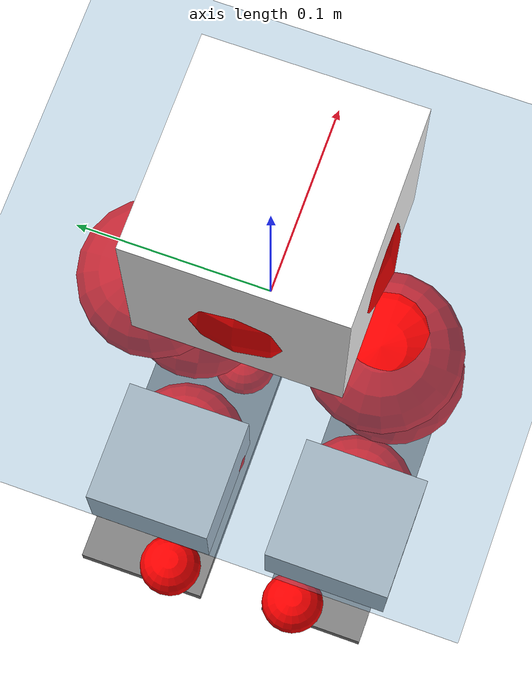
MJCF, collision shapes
<mujoco model="pi_12dof_release_v1">
  <compiler angle="radian" assetdir="assets" balanceinertia="true" inertiafromgeom="false"/>

  <option timestep="0.005" density="1.2" viscosity="2e-05"/>

  <size nkey="1"/>

  <visual>
    <quality shadowsize="8192"/>
    <map shadowclip="0.5"/>
  </visual>

  <default>
    <default class="/">
      <joint armature="0.01" damping="0.01" frictionloss="0.01"/>
      <geom contype="0" conaffinity="0" group="1" solref="-1000 -80"/>
      <site size="0.01 0.005 0.005" group="5"/>
      <general forcelimited="true" biastype="affine" gainprm="20" biasprm="0 -20 -0.5"/>
      <default class="foot">
        <geom size="0.0845 0.036 0.005" type="box" condim="6" group="4" priority="1" friction="0.9 0.2 0.2" solimp="0.015 1 0.005"/>
      </default>
      <default class="reward_collision_sphere">
        <geom group="5" rgba="1 0 0 1"/>
      </default>
    </default>
  </default>

  <asset>
    <texture type="skybox" colorspace="auto" name="//unnamed_texture_0" builtin="gradient" rgb1="0.95 0.95 0.95" rgb2="0.95 0.95 0.95" width="100" height="600"/>
    <texture type="2d" colorspace="auto" name="texplane" builtin="checker" rgb1="0.345 0.575 0.748" rgb2="0.345 0.575 0.748" markrgb="1 1 1" width="512" height="512"/>
    <material name="MatPlane" class="/" texture="texplane" texuniform="true" texrepeat="2 2" specular="0.9"/>
    <mesh name="baselink_1" class="/" file="baselink_1.STL"/>
    <mesh name="r_hip_pitch_link" class="/" file="r_hip_pitch_link.STL"/>
    <mesh name="r_hip_roll_link" class="/" file="r_hip_roll_link.STL"/>
    <mesh name="r_thigh_link" class="/" file="r_thigh_link.STL"/>
    <mesh name="r_calf_link" class="/" file="r_calf_link.STL"/>
    <mesh name="r_ankle_pitch_link" class="/" file="r_ankle_pitch_link.STL"/>
    <mesh name="r_ankle_roll_link" class="/" file="r_ankle_roll_link.STL"/>
    <mesh name="l_hip_pitch_link" class="/" file="l_hip_pitch_link.STL"/>
    <mesh name="l_hip_roll_link" class="/" file="l_hip_roll_link.STL"/>
    <mesh name="l_thigh_link" class="/" file="l_thigh_link.STL"/>
    <mesh name="l_calf_link" class="/" file="l_calf_link.STL"/>
    <mesh name="l_ankle_pitch_link" class="/" file="l_ankle_pitch_link.STL"/>
    <mesh name="l_ankle_roll_link" class="/" file="l_ankle_roll_link.STL"/>
  </asset>

  <worldbody>
    <geom name="floor" class="/" size="100 100 0.125" type="plane" group="0" material="MatPlane"/>
    <light name="toplight_shadow" class="/" pos="0 0 5" dir="0.0990148 0.0990148 -0.990148" type="directional" ambient="0.04 0.04 0.04" diffuse="0.55 0.55 0.55" specular="0.12 0.12 0.12"/>
    <light name="toplight_fill" class="/" pos="0 0 5" dir="0.0990148 0.0990148 -0.990148" type="directional" castshadow="false" ambient="0.04 0.04 0.04" diffuse="0.3 0.3 0.3" specular="0.08 0.08 0.08"/>
    <body name="trunk" pos="9.60147e-07 -0.00154913 0.00051316" quat="1 1.32603e-05 -5.62564e-07 -2.23835e-05">
      <inertial pos="0.00142293 -0.00252242 0.0469486" quat="0.695525 0.0209887 0.00293291 0.71819" mass="2.24002" diaginertia="0.0147355 0.00288472 0.00891884"/>
      <joint name="//unnamed_joint_0" type="free"/>
      <geom name="//unnamed_geom_1" class="/" type="mesh" density="0" rgba="1 1 1 1" mesh="baselink_1"/>
      <geom name="//unnamed_geom_2" class="/" size="0.0507746 0.0507746 0.0507746" pos="0 0 0.0932382" type="box" rgba="1 1 1 1"/>
      <geom name="//unnamed_geom_3" class="reward_collision_sphere" size="0.0558521" pos="0 0 0.0815834"/>
      <site name="imu" class="/" pos="0.0069619 0.000620469 -0.00769577" size="0.0101549"/>
      <camera name="track" class="/" pos="0 -1.59331 0" quat="0.707107 0.707107 0 0" mode="trackcom"/>
      <camera name="ego_camera" class="/" pos="0.0813258 0 0.209786" quat="-0.5 -0.5 0.5 0.5"/>
      <body name="r_hip_pitch_link" pos="0.000305516 -0.015533 -0.0360385" quat="0.992254 0.000295538 -0.124225 -0.000568395">
        <inertial pos="0.000726372 -0.0444554 0.000197704" quat="-0.0201841 0.706242 -0.0267034 0.707179" mass="0.380439" diaginertia="0.000162524 3.07276e-05 0.000179751"/>
        <joint name="r_hip_pitch_joint" class="/" pos="0 0 0" axis="0.00642296 -0.999972 -0.0037941" stiffness="0.000752589" range="-1.74855 1.24792" armature="0.0100879" damping="0.0144285" frictionloss="0.0106154"/>
        <geom name="//unnamed_geom_4" class="/" type="mesh" density="0" rgba="0.75294 0.75294 0.75294 1" mesh="r_hip_pitch_link"/>
        <geom name="//unnamed_geom_5" class="/" size="0.000507746 0.000507746 0.000507746" type="box" rgba="0.75294 0.75294 0.75294 1"/>
        <body name="r_hip_roll_link" pos="0.000111147 -0.0418538 -0.000192063" quat="1 -0.000618688 9.9085e-05 0.000125245">
          <inertial pos="0.000291324 0.000170646 -0.071283" quat="0.711964 -0.0812492 -0.0870923 0.692041" mass="0.407303" diaginertia="0.000506621 8.96857e-05 0.000281325"/>
          <joint name="r_hip_roll_joint" class="/" pos="0 0 0" axis="-0.999996 0.00271247 -0.000188256" stiffness="0.00249536" range="-0.115953 0.533203" armature="0.00968945" damping="0.00751128" frictionloss="0.00988109"/>
          <geom name="//unnamed_geom_6" class="/" type="mesh" density="0" rgba="0.75294 0.75294 0.75294 1" mesh="r_hip_roll_link"/>
          <geom name="//unnamed_geom_7" class="/" size="0.000507746 0.000507746 0.000507746" type="box" rgba="0.75294 0.75294 0.75294 1"/>
          <geom name="//unnamed_geom_8" class="reward_collision_sphere" size="0.0406197"/>
          <body name="r_thigh_link" pos="2.85598e-05 -0.00171673 -0.0805365" quat="1 3.62659e-05 4.98201e-05 -0.000118003">
            <inertial pos="0.00153258 0.000779632 -0.057884" quat="0.737419 0.675436 -1.9016e-05 6.86728e-05" mass="0.117588" diaginertia="0.000183755 3.12864e-05 0.000120499"/>
            <joint name="r_thigh_joint" class="/" pos="0 0 0" axis="0.000509745 0.0043375 -0.99999" range="-0.322423 0.598671" armature="0.0105265" damping="0.00699075" frictionloss="0.0099844"/>
            <geom name="//unnamed_geom_9" class="/" type="mesh" density="0" rgba="0.75294 0.75294 0.75294 1" mesh="r_thigh_link"/>
            <geom name="//unnamed_geom_10" class="/" size="0.000507746 0.000507746 0.000507746" type="box" rgba="0.75294 0.75294 0.75294 1"/>
            <body name="r_calf_link" pos="-0.00115841 -0.000872595 -0.0818452" quat="0.947656 -3.15378e-06 0.319292 1.33223e-05">
              <inertial pos="0.000435516 -0.00166927 -0.0822082" quat="0.999978 -0.00536878 0.000781075 0.00378112" mass="0.834875" diaginertia="0.00538403 0.00109363 0.000385898"/>
              <joint name="r_calf_joint" class="/" pos="0 0 0" axis="-5.35791e-05 -0.999999 -0.00159319" range="-1.59872 0.645139" armature="0.0106309" damping="0.0105253" frictionloss="0.00999252"/>
              <geom name="//unnamed_geom_11" class="/" type="mesh" density="0" rgba="0.75294 0.75294 0.75294 1" mesh="r_calf_link"/>
              <geom name="//unnamed_geom_12" class="/" size="0.000507746 0.000507746 0.000507746" type="box" rgba="0.75294 0.75294 0.75294 1"/>
              <geom name="//unnamed_geom_13" class="reward_collision_sphere" size="0.0406197"/>
              <body name="r_ankle_pitch_link" pos="0.00294209 0.00298097 -0.16342" quat="0.980005 0.000148709 -0.198974 -6.30834e-05">
                <inertial pos="0.00534704 0.00032731 -0.000747692" quat="0.00238624 0.708138 -0.00327183 0.706063" mass="0.191197" diaginertia="0.000475351 7.29587e-05 0.000266699"/>
                <joint name="r_ankle_pitch_joint" class="/" pos="0 0 0" axis="-0.0117859 -0.99991 -0.0063961" range="-1.30635 0.549625" armature="0.0103525" damping="0.0131661" frictionloss="0.0106441"/>
                <geom name="//unnamed_geom_14" class="/" type="mesh" density="0" rgba="0.75294 0.75294 0.75294 1" mesh="r_ankle_pitch_link"/>
                <geom name="//unnamed_geom_15" class="/" size="0.0396042 0.0406197 0.0253873" type="box" rgba="0.75294 0.75294 0.75294 1"/>
                <body name="r_ankle_roll_link" pos="0.080308 0.00176489 -0.000846634" quat="0.999999 0.000472466 0.00019521 0.000944868">
                  <inertial pos="-0.0267295 -0.000333457 -0.0159772" quat="0.559236 0.42918 0.435495 0.559824" mass="0.546876" diaginertia="0.00168064 0.000331957 0.000601273"/>
                  <joint name="r_ankle_roll_joint" class="/" pos="0 0 0" axis="-1 1.14312e-05 1.32876e-05" range="-0.201151 0.143668" armature="0.0100749" damping="0.0134644" frictionloss="0.0102682"/>
                  <geom name="//unnamed_geom_16" class="/" type="mesh" density="0" rgba="0.75294 0.75294 0.75294 1" mesh="r_ankle_roll_link"/>
                  <geom name="//unnamed_geom_17" class="/" type="mesh" rgba="0.75294 0.75294 0.75294 1" mesh="r_ankle_roll_link"/>
                  <geom name="right_foot" class="foot" size="0.0847083 0.0338175 0.00460949" pos="-0.0553016 0 -0.051281"/>
                  <geom name="//unnamed_geom_19" class="reward_collision_sphere" size="0.0406197" pos="-0.0542172 0 -0.0233095"/>
                  <geom name="//unnamed_geom_20" class="reward_collision_sphere" size="0.0203098" pos="0.0162652 0.0159331 -0.0466191"/>
                  <geom name="//unnamed_geom_21" class="reward_collision_sphere" size="0.0203098" pos="-0.130121 0.0159331 -0.0466191"/>
                  <site name="right_foot" class="foot" pos="-0.0553016 0 -0.051281" size="0.0101549"/>
                </body>
              </body>
            </body>
          </body>
        </body>
      </body>
      <body name="l_hip_pitch_link" pos="-0.000420862 0.0179851 -0.038011" quat="0.992195 -0.000423654 -0.124694 0.000319982">
        <inertial pos="0.000535547 0.0409001 -0.000717233" quat="-0.0384049 0.707301 0.0340862 0.705045" mass="0.398934" diaginertia="0.000191108 3.33745e-05 0.000215"/>
        <joint name="l_hip_pitch_joint" class="/" pos="0 0 0" axis="-4.5795e-05 0.999999 0.00153754" stiffness="0.00463194" range="-1.24362 1.75708" armature="0.00987142" damping="0" frictionloss="0.0105835"/>
        <geom name="//unnamed_geom_22" class="/" type="mesh" density="0" rgba="0.75294 0.75294 0.75294 1" mesh="l_hip_pitch_link"/>
        <geom name="//unnamed_geom_23" class="/" size="0.000507746 0.000507746 0.000507746" type="box" rgba="0.75294 0.75294 0.75294 1"/>
        <body name="l_hip_roll_link" pos="1.34612e-05 0.0446252 -0.00234972" quat="1 8.87077e-05 5.22891e-05 0.000197523">
          <inertial pos="-0.0013285 -0.000512893 -0.0736314" quat="0.698833 -0.0754728 -0.0789242 0.7069" mass="0.415122" diaginertia="0.000499586 8.71764e-05 0.000271318"/>
          <joint name="l_hip_roll_joint" class="/" pos="0 0 0" axis="-0.999985 -0.00467426 0.00292987" range="-0.549746 0.116691" armature="0.0110504" damping="0.0048849" frictionloss="0.00967388"/>
          <geom name="//unnamed_geom_24" class="/" type="mesh" density="0" rgba="0.75294 0.75294 0.75294 1" mesh="l_hip_roll_link"/>
          <geom name="//unnamed_geom_25" class="/" size="0.000507746 0.000507746 0.000507746" type="box" rgba="0.75294 0.75294 0.75294 1"/>
          <geom name="//unnamed_geom_26" class="reward_collision_sphere" size="0.0406197"/>
          <body name="l_thigh_link" pos="-0.00043687 -0.0029185 -0.0805665" quat="1 -3.24968e-05 -0.000278365 -0.000271872">
            <inertial pos="0.000239321 -0.00155717 -0.0543851" quat="0.676835 0.736134 -0.000855436 -0.000774318" mass="0.119214" diaginertia="0.000193189 3.03361e-05 0.000125127"/>
            <joint name="l_thigh_joint" class="/" pos="0 0 0" axis="-0.000419327 -0.000895938 -1" range="-0.599029 0.300691" armature="0.00988227" damping="0.00429134" frictionloss="0.0100863"/>
            <geom name="//unnamed_geom_27" class="/" type="mesh" density="0" rgba="0.75294 0.75294 0.75294 1" mesh="l_thigh_link"/>
            <geom name="//unnamed_geom_28" class="/" size="0.000507746 0.000507746 0.000507746" type="box" rgba="0.75294 0.75294 0.75294 1"/>
            <body name="l_calf_link" pos="-0.000304453 2.01011e-06 -0.0816946" quat="0.947704 -0.000186241 0.319148 0.000940296">
              <inertial pos="-0.000672679 0.00431778 -0.0829274" quat="0.999975 -0.000522904 0.00146036 0.00683702" mass="0.857504" diaginertia="0.00538235 0.00111181 0.00038729"/>
              <joint name="l_calf_joint" class="/" pos="0 0 0" axis="-0.00264963 0.999994 -0.00236309" range="-0.665473 1.67" armature="0.00960061" damping="0.00328953" frictionloss="0.00964156"/>
              <geom name="//unnamed_geom_29" class="/" type="mesh" density="0" rgba="0.75294 0.75294 0.75294 1" mesh="l_calf_link"/>
              <geom name="//unnamed_geom_30" class="/" size="0.000507746 0.000507746 0.000507746" type="box" rgba="0.75294 0.75294 0.75294 1"/>
              <geom name="//unnamed_geom_31" class="reward_collision_sphere" size="0.0406197"/>
              <body name="l_ankle_pitch_link" pos="-0.0002849 0.0027689 -0.163561" quat="0.980235 0.000181079 -0.197835 0.000805099">
                <inertial pos="0.00538077 -0.00293207 -6.12043e-05" quat="-0.00577974 0.706591 0.00229027 0.707595" mass="0.18435" diaginertia="0.000462368 7.09721e-05 0.000256799"/>
                <joint name="l_ankle_pitch_joint" class="/" pos="0 0 0" axis="-4.94973e-05 0.999999 -0.00115907" range="-0.543215 1.31907" armature="0.0103683" damping="0.00331747" frictionloss="0.0101931"/>
                <geom name="//unnamed_geom_32" class="/" type="mesh" density="0" rgba="0.75294 0.75294 0.75294 1" mesh="l_ankle_pitch_link"/>
                <geom name="//unnamed_geom_33" class="/" size="0.0396042 0.0406197 0.0253873" type="box" rgba="0.75294 0.75294 0.75294 1"/>
                <body name="l_ankle_roll_link" pos="0.0791151 -0.00106799 0.000856233" quat="1 3.23649e-05 0.00021179 -8.95733e-05">
                  <inertial pos="-0.0237488 -0.00041781 -0.0158428" quat="0.56195 0.42724 0.432709 0.56075" mass="0.537279" diaginertia="0.0017389 0.00033386 0.00060193"/>
                  <joint name="l_ankle_roll_joint" class="/" pos="0 0 0" axis="-0.999911 -0.01258 0.00441964" range="-0.101919 0.125895" armature="0.0113252" damping="0.0219827" frictionloss="0.00912442"/>
                  <geom name="//unnamed_geom_34" class="/" type="mesh" density="0" rgba="0.75294 0.75294 0.75294 1" mesh="l_ankle_roll_link"/>
                  <geom name="//unnamed_geom_35" class="/" type="mesh" rgba="0.75294 0.75294 0.75294 1" mesh="l_ankle_roll_link"/>
                  <geom name="left_foot" class="foot" size="0.0877184 0.0416314 0.00509154" pos="-0.0553016 0 -0.051281"/>
                  <geom name="//unnamed_geom_37" class="reward_collision_sphere" size="0.0406197" pos="-0.0542172 0 -0.0233095"/>
                  <geom name="//unnamed_geom_38" class="reward_collision_sphere" size="0.0203098" pos="0.0162652 -0.0159331 -0.0466191"/>
                  <geom name="//unnamed_geom_39" class="reward_collision_sphere" size="0.0203098" pos="-0.130121 -0.0159331 -0.0466191"/>
                  <site name="left_foot" class="foot" pos="-0.0553016 0 -0.051281" size="0.0101549"/>
                </body>
              </body>
            </body>
          </body>
        </body>
      </body>
    </body>
  </worldbody>

  <contact>
    <pair class="/" geom1="floor" geom2="right_foot" name="//unnamed_contact_1"/>
    <pair class="/" geom1="floor" geom2="left_foot" name="//unnamed_contact_0"/>
  </contact>

  <actuator>
    <general name="r_hip_pitch_joint" class="/" joint="r_hip_pitch_joint" forcerange="-22.1353 22.1353" gainprm="20.2184" biasprm="0 -20.2184 -0.510982"/>
    <general name="r_hip_roll_joint" class="/" joint="r_hip_roll_joint" forcerange="-21.4178 21.4178" gainprm="20.2184" biasprm="0 -20.2184 -0.510982"/>
    <general name="r_thigh_joint" class="/" joint="r_thigh_joint" forcerange="-22.1321 22.1321" gainprm="20.2184" biasprm="0 -20.2184 -0.510982"/>
    <general name="r_calf_joint" class="/" joint="r_calf_joint" forcerange="-19.5497 19.5497" gainprm="20.2184" biasprm="0 -20.2184 -0.510982"/>
    <general name="r_ankle_pitch_joint" class="/" joint="r_ankle_pitch_joint" forcerange="-23.2425 23.2425" gainprm="20.2184" biasprm="0 -20.2184 -0.510982"/>
    <general name="r_ankle_roll_joint" class="/" joint="r_ankle_roll_joint" forcerange="-23.2556 23.2556" gainprm="20.2184" biasprm="0 -20.2184 -0.510982"/>
    <general name="l_hip_pitch_joint" class="/" joint="l_hip_pitch_joint" forcerange="-23.4184 23.4184" gainprm="20.2184" biasprm="0 -20.2184 -0.510982"/>
    <general name="l_hip_roll_joint" class="/" joint="l_hip_roll_joint" forcerange="-20.6527 20.6527" gainprm="20.2184" biasprm="0 -20.2184 -0.510982"/>
    <general name="l_thigh_joint" class="/" joint="l_thigh_joint" forcerange="-22.1848 22.1848" gainprm="20.2184" biasprm="0 -20.2184 -0.510982"/>
    <general name="l_calf_joint" class="/" joint="l_calf_joint" forcerange="-23.2621 23.2621" gainprm="20.2184" biasprm="0 -20.2184 -0.510982"/>
    <general name="l_ankle_pitch_joint" class="/" joint="l_ankle_pitch_joint" forcerange="-23.253 23.253" gainprm="20.2184" biasprm="0 -20.2184 -0.510982"/>
    <general name="l_ankle_roll_joint" class="/" joint="l_ankle_roll_joint" forcerange="-21.9224 21.9224" gainprm="20.2184" biasprm="0 -20.2184 -0.510982"/>
  </actuator>

  <sensor>
    <gyro site="imu" name="imu_angular_velocity"/>
    <velocimeter site="imu" name="imu_linear_velocity"/>
    <framelinvel objtype="site" objname="left_foot" name="left_foot_global_linear_velocity"/>
    <framelinvel objtype="site" objname="right_foot" name="right_foot_global_linear_velocity"/>
  </sensor>

  <keyframe>
    <key name="home" qpos="0 0 0.291 1 0 0 0 0.4 0 0 -0.8 0.4 0 -0.4 0 0 0.8 -0.4 0"/>
  </keyframe>
</mujoco>
